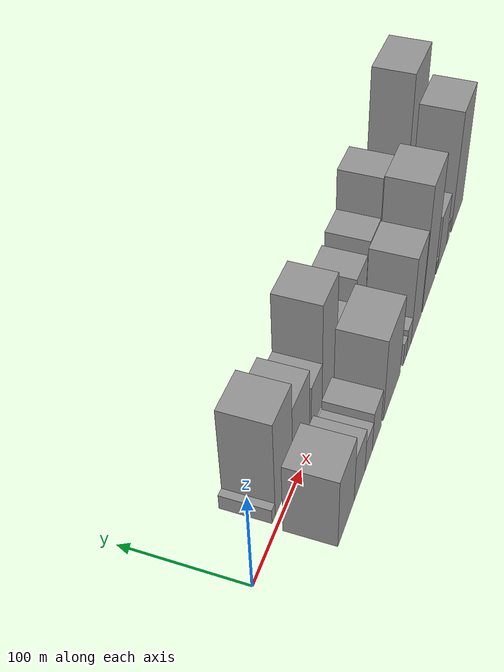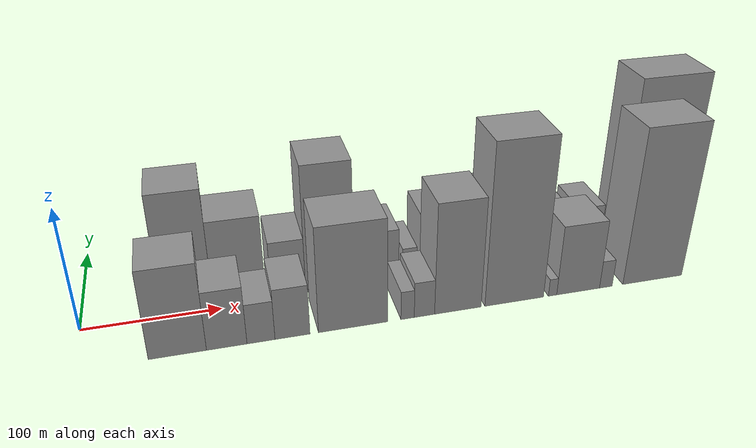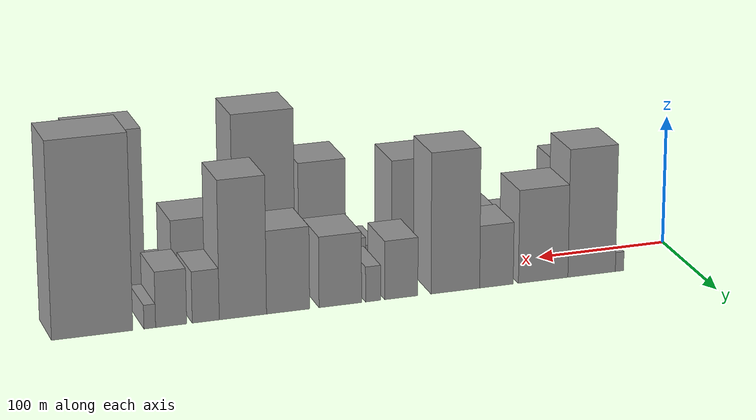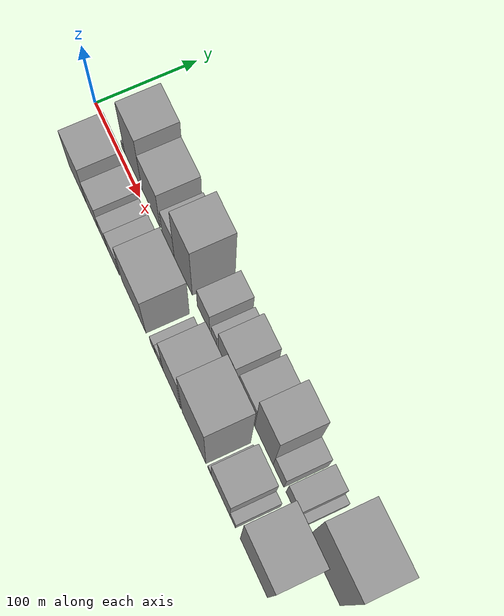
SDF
<sdf version="1.6">
 <world name="default">
  <scene>
   <sky><clouds><speed>12</speed></clouds></sky>
   <ambient>0.4 0.4 0.4 1</ambient>
   <background>0.7 0.7 0.7 1</background>
   <shadows>1</shadows>
  </scene>
  <gravity>0 0 -9.8066</gravity>
  <magnetic_field>6e-06 2.3e-05 -4.2e-05</magnetic_field>
  <physics default="0" name="default_physics" type="ode">
   <ode>
    <solver>
     <type>quick</type>
     <iters>10</iters>
     <sor>1.0</sor>
     <use_dynamic_moi_rescaling>0</use_dynamic_moi_rescaling>
    </solver>
    <constraints>
     <cfm>0</cfm>
     <erp>0.2</erp>
     <contact_max_correcting_vel>100</contact_max_correcting_vel>
     <contact_surface_layer>0.001</contact_surface_layer>
    </constraints>
   </ode>
   <max_step_size>0.004</max_step_size>
   <real_time_factor>1</real_time_factor>
   <real_time_update_rate>250</real_time_update_rate>
  </physics>
  <light name="sun" type="directional">
   <pose>0 0 10 0 0 0</pose>
   <diffuse>0.8 0.8 0.8 1</diffuse>
   <specular>0.2 0.2 0.2 1</specular>
   <attenuation>
    <range>1000</range>
    <constant>0.9</constant>
    <linear>0.01</linear>
    <quadratic>0.001</quadratic>
   </attenuation>
   <direction>-0.5 0.1 -0.9</direction>
  </light>
  <model name="building_1">
   <static>1</static>
   <pose>53.3067 24.5000 0 0.000000 0.000000 1.570796</pose>
   <link name="link">
    <pose>0 0 7.50 0 0 0</pose>
    <collision name="collision"><geometry><box><size>40.0000 6.6133 15.0000</size></box></geometry></collision>
    <visual name="visual">
     <cast_shadows>0</cast_shadows>
     <geometry><box><size>40.0000 6.6133 15.0000</size></box></geometry>
     <material>
      <script>
       <uri>model://grey_wall/materials/scripts</uri>
       <uri>model://grey_wall/materials/textures</uri>
       <name>vrc/grey_wall</name>
      </script>
     </material>
    </visual>
   </link>
  </model>
  <model name="building_2">
   <static>1</static>
   <pose>75.3130 24.5000 0 0.000000 0.000000 1.570796</pose>
   <link name="link">
    <pose>0 0 49.50 0 0 0</pose>
    <collision name="collision"><geometry><box><size>40.0000 37.3995 99.0000</size></box></geometry></collision>
    <visual name="visual">
     <cast_shadows>0</cast_shadows>
     <geometry><box><size>40.0000 37.3995 99.0000</size></box></geometry>
     <material>
      <script>
       <uri>model://grey_wall/materials/scripts</uri>
       <uri>model://grey_wall/materials/textures</uri>
       <name>vrc/grey_wall</name>
      </script>
     </material>
    </visual>
   </link>
  </model>
  <model name="building_3">
   <static>1</static>
   <pose>113.3549 24.5000 0 0.000000 0.000000 1.570796</pose>
   <link name="link">
    <pose>0 0 36.00 0 0 0</pose>
    <collision name="collision"><geometry><box><size>40.0000 38.6843 72.0000</size></box></geometry></collision>
    <visual name="visual">
     <cast_shadows>0</cast_shadows>
     <geometry><box><size>40.0000 38.6843 72.0000</size></box></geometry>
     <material>
      <script>
       <uri>model://grey_wall/materials/scripts</uri>
       <uri>model://grey_wall/materials/textures</uri>
       <name>vrc/grey_wall</name>
      </script>
     </material>
    </visual>
   </link>
  </model>
  <model name="building_4">
   <static>1</static>
   <pose>149.6819 24.5000 0 0.000000 0.000000 1.570796</pose>
   <link name="link">
    <pose>0 0 24.00 0 0 0</pose>
    <collision name="collision"><geometry><box><size>40.0000 25.9696 48.0000</size></box></geometry></collision>
    <visual name="visual">
     <cast_shadows>0</cast_shadows>
     <geometry><box><size>40.0000 25.9696 48.0000</size></box></geometry>
     <material>
      <script>
       <uri>model://grey_wall/materials/scripts</uri>
       <uri>model://grey_wall/materials/textures</uri>
       <name>vrc/grey_wall</name>
      </script>
     </material>
    </visual>
   </link>
  </model>
  <model name="building_5">
   <static>1</static>
   <pose>181.3449 24.5000 0 0.000000 0.000000 1.570796</pose>
   <link name="link">
    <pose>0 0 54.00 0 0 0</pose>
    <collision name="collision"><geometry><box><size>40.0000 37.3564 108.0000</size></box></geometry></collision>
    <visual name="visual">
     <cast_shadows>0</cast_shadows>
     <geometry><box><size>40.0000 37.3564 108.0000</size></box></geometry>
     <material>
      <script>
       <uri>model://grey_wall/materials/scripts</uri>
       <uri>model://grey_wall/materials/textures</uri>
       <name>vrc/grey_wall</name>
      </script>
     </material>
    </visual>
   </link>
  </model>
  <model name="building_6">
   <static>1</static>
   <pose>222.6296 24.5000 0 0.000000 0.000000 1.570796</pose>
   <link name="link">
    <pose>0 0 22.50 0 0 0</pose>
    <collision name="collision"><geometry><box><size>40.0000 25.2129 45.0000</size></box></geometry></collision>
    <visual name="visual">
     <cast_shadows>0</cast_shadows>
     <geometry><box><size>40.0000 25.2129 45.0000</size></box></geometry>
     <material>
      <script>
       <uri>model://grey_wall/materials/scripts</uri>
       <uri>model://grey_wall/materials/textures</uri>
       <name>vrc/grey_wall</name>
      </script>
     </material>
    </visual>
   </link>
  </model>
  <model name="building_7">
   <static>1</static>
   <pose>243.9580 24.5000 0 0.000000 0.000000 1.570796</pose>
   <link name="link">
    <pose>0 0 13.50 0 0 0</pose>
    <collision name="collision"><geometry><box><size>40.0000 11.4440 27.0000</size></box></geometry></collision>
    <visual name="visual">
     <cast_shadows>0</cast_shadows>
     <geometry><box><size>40.0000 11.4440 27.0000</size></box></geometry>
     <material>
      <script>
       <uri>model://grey_wall/materials/scripts</uri>
       <uri>model://grey_wall/materials/textures</uri>
       <name>vrc/grey_wall</name>
      </script>
     </material>
    </visual>
   </link>
  </model>
  <model name="building_8">
   <static>1</static>
   <pose>268.6321 24.5000 0 0.000000 0.000000 1.570796</pose>
   <link name="link">
    <pose>0 0 27.00 0 0 0</pose>
    <collision name="collision"><geometry><box><size>40.0000 31.9043 54.0000</size></box></geometry></collision>
    <visual name="visual">
     <cast_shadows>0</cast_shadows>
     <geometry><box><size>40.0000 31.9043 54.0000</size></box></geometry>
     <material>
      <script>
       <uri>model://grey_wall/materials/scripts</uri>
       <uri>model://grey_wall/materials/textures</uri>
       <name>vrc/grey_wall</name>
      </script>
     </material>
    </visual>
   </link>
  </model>
  <model name="building_9">
   <static>1</static>
   <pose>307.5915 24.5000 0 0.000000 0.000000 1.570796</pose>
   <link name="link">
    <pose>0 0 31.50 0 0 0</pose>
    <collision name="collision"><geometry><box><size>40.0000 32.0143 63.0000</size></box></geometry></collision>
    <visual name="visual">
     <cast_shadows>0</cast_shadows>
     <geometry><box><size>40.0000 32.0143 63.0000</size></box></geometry>
     <material>
      <script>
       <uri>model://grey_wall/materials/scripts</uri>
       <uri>model://grey_wall/materials/textures</uri>
       <name>vrc/grey_wall</name>
      </script>
     </material>
    </visual>
   </link>
  </model>
  <model name="building_10">
   <static>1</static>
   <pose>340.9889 24.5000 0 0.000000 0.000000 1.570796</pose>
   <link name="link">
    <pose>0 0 52.50 0 0 0</pose>
    <collision name="collision"><geometry><box><size>40.0000 34.7806 105.0000</size></box></geometry></collision>
    <visual name="visual">
     <cast_shadows>0</cast_shadows>
     <geometry><box><size>40.0000 34.7806 105.0000</size></box></geometry>
     <material>
      <script>
       <uri>model://grey_wall/materials/scripts</uri>
       <uri>model://grey_wall/materials/textures</uri>
       <name>vrc/grey_wall</name>
      </script>
     </material>
    </visual>
   </link>
  </model>
  <model name="building_11">
   <static>1</static>
   <pose>368.2627 24.5000 0 0.000000 0.000000 1.570796</pose>
   <link name="link">
    <pose>0 0 19.50 0 0 0</pose>
    <collision name="collision"><geometry><box><size>40.0000 19.7670 39.0000</size></box></geometry></collision>
    <visual name="visual">
     <cast_shadows>0</cast_shadows>
     <geometry><box><size>40.0000 19.7670 39.0000</size></box></geometry>
     <material>
      <script>
       <uri>model://grey_wall/materials/scripts</uri>
       <uri>model://grey_wall/materials/textures</uri>
       <name>vrc/grey_wall</name>
      </script>
     </material>
    </visual>
   </link>
  </model>
  <model name="building_12">
   <static>1</static>
   <pose>393.4490 24.5000 0 0.000000 0.000000 1.570796</pose>
   <link name="link">
    <pose>0 0 21.00 0 0 0</pose>
    <collision name="collision"><geometry><box><size>40.0000 22.6056 42.0000</size></box></geometry></collision>
    <visual name="visual">
     <cast_shadows>0</cast_shadows>
     <geometry><box><size>40.0000 22.6056 42.0000</size></box></geometry>
     <material>
      <script>
       <uri>model://grey_wall/materials/scripts</uri>
       <uri>model://grey_wall/materials/textures</uri>
       <name>vrc/grey_wall</name>
      </script>
     </material>
    </visual>
   </link>
  </model>
  <model name="building_13">
   <static>1</static>
   <pose>408.9536 24.5000 0 0.000000 0.000000 1.570796</pose>
   <link name="link">
    <pose>0 0 9.00 0 0 0</pose>
    <collision name="collision"><geometry><box><size>40.0000 8.4036 18.0000</size></box></geometry></collision>
    <visual name="visual">
     <cast_shadows>0</cast_shadows>
     <geometry><box><size>40.0000 8.4036 18.0000</size></box></geometry>
     <material>
      <script>
       <uri>model://grey_wall/materials/scripts</uri>
       <uri>model://grey_wall/materials/textures</uri>
       <name>vrc/grey_wall</name>
      </script>
     </material>
    </visual>
   </link>
  </model>
  <model name="building_14">
   <static>1</static>
   <pose>450.2723 24.5000 0 0.000000 0.000000 1.570796</pose>
   <link name="link">
    <pose>0 0 73.50 0 0 0</pose>
    <collision name="collision"><geometry><box><size>40.0000 58.2338 147.0000</size></box></geometry></collision>
    <visual name="visual">
     <cast_shadows>0</cast_shadows>
     <geometry><box><size>40.0000 58.2338 147.0000</size></box></geometry>
     <material>
      <script>
       <uri>model://grey_wall/materials/scripts</uri>
       <uri>model://grey_wall/materials/textures</uri>
       <name>vrc/grey_wall</name>
      </script>
     </material>
    </visual>
   </link>
  </model>
  <model name="building_15">
   <static>1</static>
   <pose>66.4160 -24.5000 0 0.000000 0.000000 1.570796</pose>
   <link name="link">
    <pose>0 0 36.00 0 0 0</pose>
    <collision name="collision"><geometry><box><size>40.0000 38.8320 72.0000</size></box></geometry></collision>
    <visual name="visual">
     <cast_shadows>0</cast_shadows>
     <geometry><box><size>40.0000 38.8320 72.0000</size></box></geometry>
     <material>
      <script>
       <uri>model://grey_wall/materials/scripts</uri>
       <uri>model://grey_wall/materials/textures</uri>
       <name>vrc/grey_wall</name>
      </script>
     </material>
    </visual>
   </link>
  </model>
  <model name="building_16">
   <static>1</static>
   <pose>99.6574 -24.5000 0 0.000000 0.000000 1.570796</pose>
   <link name="link">
    <pose>0 0 24.00 0 0 0</pose>
    <collision name="collision"><geometry><box><size>40.0000 27.6507 48.0000</size></box></geometry></collision>
    <visual name="visual">
     <cast_shadows>0</cast_shadows>
     <geometry><box><size>40.0000 27.6507 48.0000</size></box></geometry>
     <material>
      <script>
       <uri>model://grey_wall/materials/scripts</uri>
       <uri>model://grey_wall/materials/textures</uri>
       <name>vrc/grey_wall</name>
      </script>
     </material>
    </visual>
   </link>
  </model>
  <model name="building_17">
   <static>1</static>
   <pose>123.1968 -24.5000 0 0.000000 0.000000 1.570796</pose>
   <link name="link">
    <pose>0 0 16.50 0 0 0</pose>
    <collision name="collision"><geometry><box><size>40.0000 19.4282 33.0000</size></box></geometry></collision>
    <visual name="visual">
     <cast_shadows>0</cast_shadows>
     <geometry><box><size>40.0000 19.4282 33.0000</size></box></geometry>
     <material>
      <script>
       <uri>model://grey_wall/materials/scripts</uri>
       <uri>model://grey_wall/materials/textures</uri>
       <name>vrc/grey_wall</name>
      </script>
     </material>
    </visual>
   </link>
  </model>
  <model name="building_18">
   <static>1</static>
   <pose>145.2508 -24.5000 0 0.000000 0.000000 1.570796</pose>
   <link name="link">
    <pose>0 0 21.00 0 0 0</pose>
    <collision name="collision"><geometry><box><size>40.0000 24.6797 42.0000</size></box></geometry></collision>
    <visual name="visual">
     <cast_shadows>0</cast_shadows>
     <geometry><box><size>40.0000 24.6797 42.0000</size></box></geometry>
     <material>
      <script>
       <uri>model://grey_wall/materials/scripts</uri>
       <uri>model://grey_wall/materials/textures</uri>
       <name>vrc/grey_wall</name>
      </script>
     </material>
    </visual>
   </link>
  </model>
  <model name="building_19">
   <static>1</static>
   <pose>188.7232 -24.5000 0 0.000000 0.000000 1.570796</pose>
   <link name="link">
    <pose>0 0 43.50 0 0 0</pose>
    <collision name="collision"><geometry><box><size>40.0000 50.2651 87.0000</size></box></geometry></collision>
    <visual name="visual">
     <cast_shadows>0</cast_shadows>
     <geometry><box><size>40.0000 50.2651 87.0000</size></box></geometry>
     <material>
      <script>
       <uri>model://grey_wall/materials/scripts</uri>
       <uri>model://grey_wall/materials/textures</uri>
       <name>vrc/grey_wall</name>
      </script>
     </material>
    </visual>
   </link>
  </model>
  <model name="building_20">
   <static>1</static>
   <pose>228.8500 -24.5000 0 0.000000 0.000000 1.570796</pose>
   <link name="link">
    <pose>0 0 12.00 0 0 0</pose>
    <collision name="collision"><geometry><box><size>40.0000 9.9884 24.0000</size></box></geometry></collision>
    <visual name="visual">
     <cast_shadows>0</cast_shadows>
     <geometry><box><size>40.0000 9.9884 24.0000</size></box></geometry>
     <material>
      <script>
       <uri>model://grey_wall/materials/scripts</uri>
       <uri>model://grey_wall/materials/textures</uri>
       <name>vrc/grey_wall</name>
      </script>
     </material>
    </visual>
   </link>
  </model>
  <model name="building_21">
   <static>1</static>
   <pose>241.5247 -24.5000 0 0.000000 0.000000 1.570796</pose>
   <link name="link">
    <pose>0 0 15.00 0 0 0</pose>
    <collision name="collision"><geometry><box><size>40.0000 15.3610 30.0000</size></box></geometry></collision>
    <visual name="visual">
     <cast_shadows>0</cast_shadows>
     <geometry><box><size>40.0000 15.3610 30.0000</size></box></geometry>
     <material>
      <script>
       <uri>model://grey_wall/materials/scripts</uri>
       <uri>model://grey_wall/materials/textures</uri>
       <name>vrc/grey_wall</name>
      </script>
     </material>
    </visual>
   </link>
  </model>
  <model name="building_22">
   <static>1</static>
   <pose>267.0844 -24.5000 0 0.000000 0.000000 1.570796</pose>
   <link name="link">
    <pose>0 0 46.50 0 0 0</pose>
    <collision name="collision"><geometry><box><size>40.0000 35.7584 93.0000</size></box></geometry></collision>
    <visual name="visual">
     <cast_shadows>0</cast_shadows>
     <geometry><box><size>40.0000 35.7584 93.0000</size></box></geometry>
     <material>
      <script>
       <uri>model://grey_wall/materials/scripts</uri>
       <uri>model://grey_wall/materials/textures</uri>
       <name>vrc/grey_wall</name>
      </script>
     </material>
    </visual>
   </link>
  </model>
  <model name="building_23">
   <static>1</static>
   <pose>311.2142 -24.5000 0 0.000000 0.000000 1.570796</pose>
   <link name="link">
    <pose>0 0 67.50 0 0 0</pose>
    <collision name="collision"><geometry><box><size>40.0000 46.5012 135.0000</size></box></geometry></collision>
    <visual name="visual">
     <cast_shadows>0</cast_shadows>
     <geometry><box><size>40.0000 46.5012 135.0000</size></box></geometry>
     <material>
      <script>
       <uri>model://grey_wall/materials/scripts</uri>
       <uri>model://grey_wall/materials/textures</uri>
       <name>vrc/grey_wall</name>
      </script>
     </material>
    </visual>
   </link>
  </model>
  <model name="building_24">
   <static>1</static>
   <pose>341.8339 -24.5000 0 0.000000 0.000000 1.570796</pose>
   <link name="link">
    <pose>0 0 7.50 0 0 0</pose>
    <collision name="collision"><geometry><box><size>40.0000 6.7383 15.0000</size></box></geometry></collision>
    <visual name="visual">
     <cast_shadows>0</cast_shadows>
     <geometry><box><size>40.0000 6.7383 15.0000</size></box></geometry>
     <material>
      <script>
       <uri>model://grey_wall/materials/scripts</uri>
       <uri>model://grey_wall/materials/textures</uri>
       <name>vrc/grey_wall</name>
      </script>
     </material>
    </visual>
   </link>
  </model>
  <model name="building_25">
   <static>1</static>
   <pose>362.7840 -24.5000 0 0.000000 0.000000 1.570796</pose>
   <link name="link">
    <pose>0 0 30.00 0 0 0</pose>
    <collision name="collision"><geometry><box><size>40.0000 35.1619 60.0000</size></box></geometry></collision>
    <visual name="visual">
     <cast_shadows>0</cast_shadows>
     <geometry><box><size>40.0000 35.1619 60.0000</size></box></geometry>
     <material>
      <script>
       <uri>model://grey_wall/materials/scripts</uri>
       <uri>model://grey_wall/materials/textures</uri>
       <name>vrc/grey_wall</name>
      </script>
     </material>
    </visual>
   </link>
  </model>
  <model name="building_26">
   <static>1</static>
   <pose>385.6563 -24.5000 0 0.000000 0.000000 1.570796</pose>
   <link name="link">
    <pose>0 0 12.00 0 0 0</pose>
    <collision name="collision"><geometry><box><size>40.0000 10.5826 24.0000</size></box></geometry></collision>
    <visual name="visual">
     <cast_shadows>0</cast_shadows>
     <geometry><box><size>40.0000 10.5826 24.0000</size></box></geometry>
     <material>
      <script>
       <uri>model://grey_wall/materials/scripts</uri>
       <uri>model://grey_wall/materials/textures</uri>
       <name>vrc/grey_wall</name>
      </script>
     </material>
    </visual>
   </link>
  </model>
  <model name="building_27">
   <static>1</static>
   <pose>425.0647 -24.5000 0 0.000000 0.000000 1.570796</pose>
   <link name="link">
    <pose>0 0 66.00 0 0 0</pose>
    <collision name="collision"><geometry><box><size>40.0000 50.2343 132.0000</size></box></geometry></collision>
    <visual name="visual">
     <cast_shadows>0</cast_shadows>
     <geometry><box><size>40.0000 50.2343 132.0000</size></box></geometry>
     <material>
      <script>
       <uri>model://grey_wall/materials/scripts</uri>
       <uri>model://grey_wall/materials/textures</uri>
       <name>vrc/grey_wall</name>
      </script>
     </material>
    </visual>
   </link>
  </model>
 </world>
</sdf>
